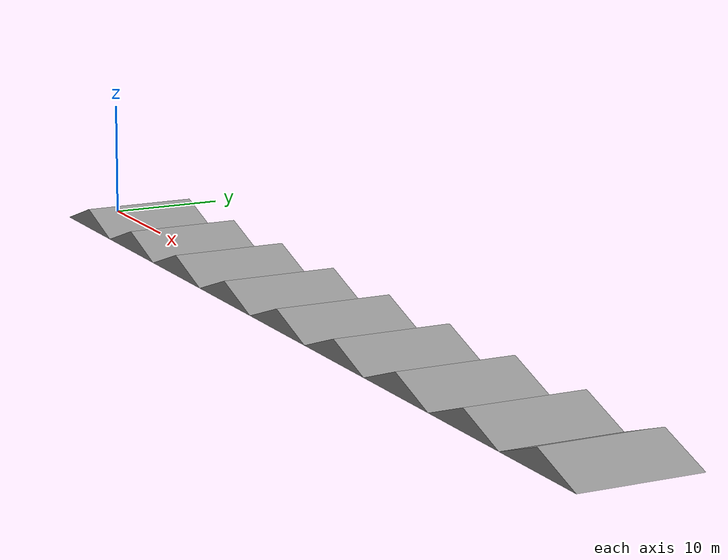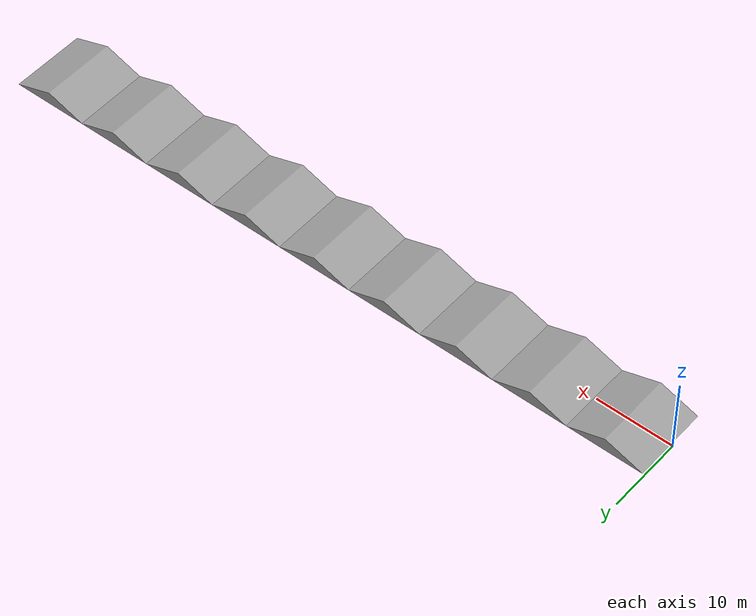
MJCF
<mujoco model="h1_pos_slide">
    <visual>
        <map force="0.1" fogend="10" shadowclip="5" />
        <headlight diffuse="0.6 0.6 0.6" ambient="0.3 0.3 0.3" specular="0 0 0" />
        <quality shadowsize="16384"/>
    </visual>

    <asset>
        <texture type="skybox" builtin="gradient" rgb1=".9 .9 .9" rgb2=".9 .9 .9" width="100" height="100"/>
        <texture builtin="checker" height="100" width="100" name="texplane" rgb1="0.9 0.9 0.9" rgb2="0.9 0.9 0.9" type="2d" mark="edge" markrgb="0.7 0.7 0.7"/>
        <material name="MatPlane" reflectance="0" shininess="1" specular="0.5" texrepeat="20 20" texture="texplane"/>
        <mesh name="slide" vertex="0.3 5 0  0.3 -5 0  5.3 5 1.75  5.3 -5 1.75  10.3 5 0  10.3 -5 0"/>
        <material name="black" rgba="0.1 0.1 0.1 1"/>
        <material name="white" rgba="1 1 1 1"/>
    </asset>

    <default>
        <default class="h1">
            <default class="visual">
                <geom contype="0" conaffinity="0" group="2" material="black"/>
            </default>
            <default class="collision">
                <geom group="3" mass="0.0001" density="0"/>
            </default>
        </default>
    </default>

    <worldbody>
        <light pos="0 0 10" dir="0 0 -1" directional="true" ambient="0.1 0.1 0.1" diffuse="0.5 0.5 0.5" specular="0.3 0.3 0.3"/>
        <body name="slides" pos="0 0 0">
            <geom type="mesh" mesh="slide" pos="0 0 0" rgba="0.6 0.6 0.6 1" class="visual"/>
            <geom type="mesh" mesh="slide" pos="10 0 0" rgba="0.6 0.6 0.6 1" class="visual"/>
            <geom type="mesh" mesh="slide" pos="20 0 0" rgba="0.6 0.6 0.6 1" class="visual"/>
            <geom type="mesh" mesh="slide" pos="30 0 0" rgba="0.6 0.6 0.6 1" class="visual"/>
            <geom type="mesh" mesh="slide" pos="40 0 0" rgba="0.6 0.6 0.6 1" class="visual"/>
            <geom type="mesh" mesh="slide" pos="50 0 0" rgba="0.6 0.6 0.6 1" class="visual"/>
            <geom type="mesh" mesh="slide" pos="60 0 0" rgba="0.6 0.6 0.6 1" class="visual"/>
            <geom type="mesh" mesh="slide" pos="70 0 0" rgba="0.6 0.6 0.6 1" class="visual"/>
            <geom type="mesh" mesh="slide" pos="80 0 0" rgba="0.6 0.6 0.6 1" class="visual"/>

            <geom type="mesh" mesh="slide" pos="0 0 0"  class="collision"/>
            <geom type="mesh" mesh="slide" pos="10 0 0"  class="collision"/>
            <geom type="mesh" mesh="slide" pos="20 0 0"  class="collision"/>
            <geom type="mesh" mesh="slide" pos="30 0 0"  class="collision"/>
            <geom type="mesh" mesh="slide" pos="40 0 0"  class="collision"/>
            <geom type="mesh" mesh="slide" pos="50 0 0"  class="collision"/>
            <geom type="mesh" mesh="slide" pos="60 0 0"  class="collision"/>
            <geom type="mesh" mesh="slide" pos="70 0 0"  class="collision"/>
            <geom type="mesh" mesh="slide" pos="80 0 0"  class="collision"/>
        </body>

        <geom type="box" pos="48.85 -5.15 4" size="53 0.15 4" class="collision"/>
        <geom type="box" pos="48.85 5.15 4" size="53 0.15 4" class="collision"/>
        <geom type="box" pos="-4 0 4" size="0.15 5.15 4" class="collision"/>
    </worldbody>
</mujoco>
